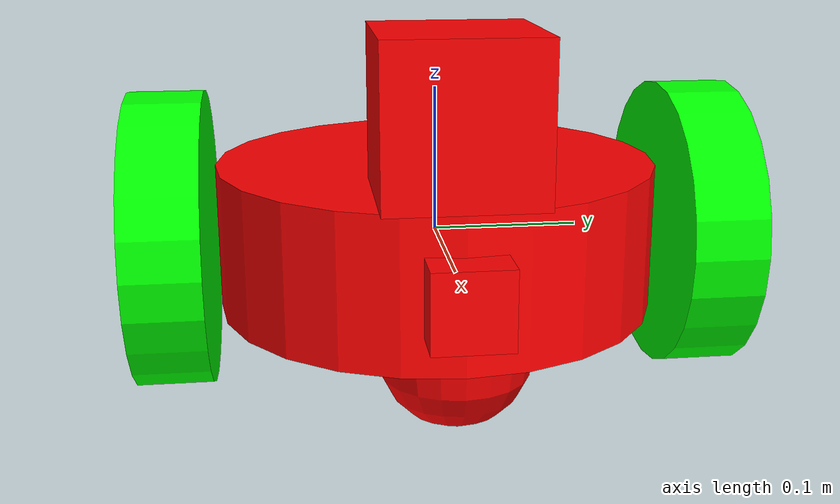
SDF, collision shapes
<?xml version='1.0'?>
<sdf version='1.6'>
  <model name='my_modified_robot'>
    <link name='robot_footprint'>
      <pose frame=''>0 0 0 0 -0 0</pose>
      <inertial>
        <pose frame=''>0 0 0 0 -0 0</pose>
        <mass>15.1</mass>
        <inertia>
          <ixx>0.100002</ixx>
          <ixy>0</ixy>
          <ixz>0</ixz>
          <iyy>0.103976</iyy>
          <iyz>0</iyz>
          <izz>0.103976</izz>
        </inertia>
      </inertial>
      <velocity_decay/>
      <sensor name='camera1' type='camera'>
        <update_rate>30</update_rate>
        <camera name='head'>
          <horizontal_fov>1.39626</horizontal_fov>
          <image>
            <width>800</width>
            <height>800</height>
            <format>R8G8B8</format>
          </image>
          <clip>
            <near>0.02</near>
            <far>300</far>
          </clip>
        </camera>
        <plugin name='camera_controller' filename='libgazebo_ros_camera.so'>
          <alwaysOn>1</alwaysOn>
          <updateRate>0.0</updateRate>
          <cameraName>camera</cameraName>
          <imageTopicName>rgb/image_raw</imageTopicName>
          <cameraInfoTopicName>rgb/camera_info</cameraInfoTopicName>
          <frameName>camera</frameName>
          <hackBaseline>0.07</hackBaseline>
          <distortionK1>0.0</distortionK1>
          <distortionK2>0.0</distortionK2>
          <distortionK3>0.0</distortionK3>
          <distortionT1>0.0</distortionT1>
          <distortionT2>0.0</distortionT2>
          <robotNamespace>/</robotNamespace>
        </plugin>
        <pose frame=''>0.2 0 0 0 -0 0</pose>
      </sensor>
      <gravity>1</gravity>
      <velocity_decay/>
      <sensor name='head_hokuyo_sensor' type='ray'>
        <visualize>0</visualize>
        <update_rate>40</update_rate>
        <ray>
          <scan>
            <horizontal>
              <samples>720</samples>
              <resolution>1</resolution>
              <min_angle>-1.5708</min_angle>
              <max_angle>1.5708</max_angle>
            </horizontal>
            <vertical>
              <samples>1</samples>
              <min_angle>0</min_angle>
              <max_angle>0</max_angle>
            </vertical>
          </scan>
          <range>
            <min>0.1</min>
            <max>30</max>
            <resolution>0.01</resolution>
          </range>
          <noise>
            <type>gaussian</type>
            <mean>0</mean>
            <stddev>0.01</stddev>
          </noise>
        </ray>
        <plugin name='gazebo_ros_head_hokuyo_controller' filename='libgazebo_ros_laser.so'>
          <topicName>/scan</topicName>
          <frameName>hokuyo</frameName>
          <robotNamespace>/</robotNamespace>
        </plugin>
        <pose frame=''>0.15 0 0.1 0 -0 0</pose>
      </sensor>
      <self_collide>0</self_collide>
      <enable_wind>0</enable_wind>
      <kinematic>0</kinematic>
      <visual name='robot_footprint_fixed_joint_lump__chassis_visual_visual'>
        <pose frame=''>0 0 0 0 -0 0</pose>
        <geometry>
          <cylinder>
            <radius>0.15</radius>
            <length>0.1</length>
          </cylinder>
        </geometry>
        <transparency>0</transparency>
        <cast_shadows>1</cast_shadows>
        <material>
          <shader type='vertex'>
            <normal_map>__default__</normal_map>
          </shader>
          <script>
            <name>ModelPreview_1::robot_footprint::robot_footprint_fixed_joint_lump__chassis_visual_visual_MATERIAL_ModelPreview_1::robot_footprint::robot_footprint_fixed_joint_lump__chassis_visual_visual_MATERIAL_</name>
          </script>
          <ambient>1 0 0 1</ambient>
          <diffuse>1 0 0 1</diffuse>
          <specular>1 0 0 1</specular>
          <emissive>1 0 0 1</emissive>
        </material>
      </visual>
      <visual name='robot_footprint_fixed_joint_lump__back_caster_visual_visual_1'>
        <pose frame=''>-0.1 0 -0.05 0 -0 0</pose>
        <geometry>
          <sphere>
            <radius>0.05</radius>
          </sphere>
        </geometry>
        <transparency>0</transparency>
        <cast_shadows>1</cast_shadows>
        <material>
          <shader type='vertex'>
            <normal_map>__default__</normal_map>
          </shader>
          <script>
            <name>ModelPreview_1::robot_footprint::robot_footprint_fixed_joint_lump__back_caster_visual_visual_1_MATERIAL_</name>
          </script>
          <ambient>0 0 0 1</ambient>
          <diffuse>0 0 0 1</diffuse>
          <specular>0 0 0 1</specular>
          <emissive>0 0 0 1</emissive>
        </material>
      </visual>
      <visual name='robot_footprint_fixed_joint_lump__front_caster_visual_visual_2'>
        <pose frame=''>0.1 0 -0.05 0 -0 0</pose>
        <geometry>
          <sphere>
            <radius>0.05</radius>
          </sphere>
        </geometry>
        <transparency>0</transparency>
        <cast_shadows>1</cast_shadows>
        <material>
          <shader type='vertex'>
            <normal_map>__default__</normal_map>
          </shader>
          <script>
            <name>ModelPreview_1::robot_footprint::robot_footprint_fixed_joint_lump__front_caster_visual_visual_2_MATERIAL_</name>
          </script>
          <ambient>0 0 0 1</ambient>
          <diffuse>0 0 0 1</diffuse>
          <specular>0 0 0 1</specular>
          <emissive>0 0 0 1</emissive>
        </material>
      </visual>
      <visual name='robot_footprint_fixed_joint_lump__camera_visual_3'>
        <pose frame=''>0.15 0 0 0 -0 0</pose>
        <geometry>
          <box>
            <size>0.05 0.05 0.05</size>
          </box>
        </geometry>
        <material>
          <script>
            <uri>__default__</uri>
            <name>ModelPreview_1::robot_footprint::robot_footprint_fixed_joint_lump__camera_visual_3_MATERIAL_</name>
          </script>
          <shader type='vertex'>
            <normal_map>__default__</normal_map>
          </shader>
          <ambient>0 1 0 1</ambient>
          <diffuse>0 1 0 1</diffuse>
          <specular>0 1 0 1</specular>
          <emissive>0 1 0 1</emissive>
        </material>
        <transparency>0</transparency>
        <cast_shadows>1</cast_shadows>
      </visual>
      <visual name='robot_footprint_fixed_joint_lump__hokuyo_visual_4'>
        <pose frame=''>0.1 0 0.08 0 -0 0</pose>
        <geometry>
          <mesh>
            <scale>1 1 1</scale>
            <uri>/home/danpy/catkin_ws/src/chase_it/my_robot/meshes/hokuyo.dae</uri>
          </mesh>
        </geometry>
        <material>
          <script>
            <uri>__default__</uri>
            <name>ModelPreview_1::robot_footprint::robot_footprint_fixed_joint_lump__hokuyo_visual_4_MATERIAL_</name>
          </script>
          <shader type='vertex'>
            <normal_map>__default__</normal_map>
          </shader>
          <ambient>0 0 0 1</ambient>
          <diffuse>0 0 0 1</diffuse>
          <specular>0 0 0 1</specular>
          <emissive>0 0 0 1</emissive>
        </material>
        <transparency>0</transparency>
        <cast_shadows>1</cast_shadows>
      </visual>
      <collision name='robot_footprint_fixed_joint_lump__collision_collision'>
        <laser_retro>0</laser_retro>
        <max_contacts>10</max_contacts>
        <pose frame=''>0 0 0 0 -0 0</pose>
        <geometry>
          <cylinder>
            <radius>0.15</radius>
            <length>0.1</length>
          </cylinder>
        </geometry>
        <surface>
          <friction>
            <ode>
              <mu>1</mu>
              <mu2>1</mu2>
              <fdir1>0 0 0</fdir1>
              <slip1>0</slip1>
              <slip2>0</slip2>
            </ode>
            <torsional>
              <coefficient>1</coefficient>
              <patch_radius>0</patch_radius>
              <surface_radius>0</surface_radius>
              <use_patch_radius>1</use_patch_radius>
              <ode>
                <slip>0</slip>
              </ode>
            </torsional>
          </friction>
          <bounce>
            <restitution_coefficient>0</restitution_coefficient>
            <threshold>1e+06</threshold>
          </bounce>
          <contact>
            <collide_without_contact>0</collide_without_contact>
            <collide_without_contact_bitmask>1</collide_without_contact_bitmask>
            <collide_bitmask>1</collide_bitmask>
            <ode>
              <soft_cfm>0</soft_cfm>
              <soft_erp>0.2</soft_erp>
              <kp>1e+13</kp>
              <kd>1</kd>
              <max_vel>0.01</max_vel>
              <min_depth>0</min_depth>
            </ode>
            <bullet>
              <split_impulse>1</split_impulse>
              <split_impulse_penetration_threshold>-0.01</split_impulse_penetration_threshold>
              <soft_cfm>0</soft_cfm>
              <soft_erp>0.2</soft_erp>
              <kp>1e+13</kp>
              <kd>1</kd>
            </bullet>
          </contact>
        </surface>
      </collision>
      <collision name='robot_footprint_fixed_joint_lump__back_caster_collision_collision_1'>
        <laser_retro>0</laser_retro>
        <max_contacts>10</max_contacts>
        <pose frame=''>-0.1 0 -0.05 0 -0 0</pose>
        <geometry>
          <sphere>
            <radius>0.0499</radius>
          </sphere>
        </geometry>
        <surface>
          <friction>
            <ode>
              <mu>1</mu>
              <mu2>1</mu2>
              <fdir1>0 0 0</fdir1>
              <slip1>0</slip1>
              <slip2>0</slip2>
            </ode>
            <torsional>
              <coefficient>1</coefficient>
              <patch_radius>0</patch_radius>
              <surface_radius>0</surface_radius>
              <use_patch_radius>1</use_patch_radius>
              <ode>
                <slip>0</slip>
              </ode>
            </torsional>
          </friction>
          <bounce>
            <restitution_coefficient>0</restitution_coefficient>
            <threshold>1e+06</threshold>
          </bounce>
          <contact>
            <collide_without_contact>0</collide_without_contact>
            <collide_without_contact_bitmask>1</collide_without_contact_bitmask>
            <collide_bitmask>1</collide_bitmask>
            <ode>
              <soft_cfm>0</soft_cfm>
              <soft_erp>0.2</soft_erp>
              <kp>1e+13</kp>
              <kd>1</kd>
              <max_vel>0.01</max_vel>
              <min_depth>0</min_depth>
            </ode>
            <bullet>
              <split_impulse>1</split_impulse>
              <split_impulse_penetration_threshold>-0.01</split_impulse_penetration_threshold>
              <soft_cfm>0</soft_cfm>
              <soft_erp>0.2</soft_erp>
              <kp>1e+13</kp>
              <kd>1</kd>
            </bullet>
          </contact>
        </surface>
      </collision>
      <collision name='robot_footprint_fixed_joint_lump__front_caster_collision_collision_2'>
        <laser_retro>0</laser_retro>
        <max_contacts>10</max_contacts>
        <pose frame=''>0.1 0 -0.05 0 -0 0</pose>
        <geometry>
          <sphere>
            <radius>0.0499</radius>
          </sphere>
        </geometry>
        <surface>
          <friction>
            <ode>
              <mu>1</mu>
              <mu2>1</mu2>
              <fdir1>0 0 0</fdir1>
              <slip1>0</slip1>
              <slip2>0</slip2>
            </ode>
            <torsional>
              <coefficient>1</coefficient>
              <patch_radius>0</patch_radius>
              <surface_radius>0</surface_radius>
              <use_patch_radius>1</use_patch_radius>
              <ode>
                <slip>0</slip>
              </ode>
            </torsional>
          </friction>
          <bounce>
            <restitution_coefficient>0</restitution_coefficient>
            <threshold>1e+06</threshold>
          </bounce>
          <contact>
            <collide_without_contact>0</collide_without_contact>
            <collide_without_contact_bitmask>1</collide_without_contact_bitmask>
            <collide_bitmask>1</collide_bitmask>
            <ode>
              <soft_cfm>0</soft_cfm>
              <soft_erp>0.2</soft_erp>
              <kp>1e+13</kp>
              <kd>1</kd>
              <max_vel>0.01</max_vel>
              <min_depth>0</min_depth>
            </ode>
            <bullet>
              <split_impulse>1</split_impulse>
              <split_impulse_penetration_threshold>-0.01</split_impulse_penetration_threshold>
              <soft_cfm>0</soft_cfm>
              <soft_erp>0.2</soft_erp>
              <kp>1e+13</kp>
              <kd>1</kd>
            </bullet>
          </contact>
        </surface>
      </collision>
      <collision name='robot_footprint_fixed_joint_lump__camera_collision_3'>
        <laser_retro>0</laser_retro>
        <max_contacts>10</max_contacts>
        <pose frame=''>0.15 0 0 0 -0 0</pose>
        <geometry>
          <box>
            <size>0.05 0.05 0.05</size>
          </box>
        </geometry>
        <surface>
          <friction>
            <ode>
              <mu>1</mu>
              <mu2>1</mu2>
              <fdir1>0 0 0</fdir1>
              <slip1>0</slip1>
              <slip2>0</slip2>
            </ode>
            <torsional>
              <coefficient>1</coefficient>
              <patch_radius>0</patch_radius>
              <surface_radius>0</surface_radius>
              <use_patch_radius>1</use_patch_radius>
              <ode>
                <slip>0</slip>
              </ode>
            </torsional>
          </friction>
          <bounce>
            <restitution_coefficient>0</restitution_coefficient>
            <threshold>1e+06</threshold>
          </bounce>
          <contact>
            <collide_without_contact>0</collide_without_contact>
            <collide_without_contact_bitmask>1</collide_without_contact_bitmask>
            <collide_bitmask>1</collide_bitmask>
            <ode>
              <soft_cfm>0</soft_cfm>
              <soft_erp>0.2</soft_erp>
              <kp>1e+13</kp>
              <kd>1</kd>
              <max_vel>0.01</max_vel>
              <min_depth>0</min_depth>
            </ode>
            <bullet>
              <split_impulse>1</split_impulse>
              <split_impulse_penetration_threshold>-0.01</split_impulse_penetration_threshold>
              <soft_cfm>0</soft_cfm>
              <soft_erp>0.2</soft_erp>
              <kp>1e+13</kp>
              <kd>1</kd>
            </bullet>
          </contact>
        </surface>
      </collision>
      <collision name='robot_footprint_fixed_joint_lump__hokuyo_collision_4'>
        <laser_retro>0</laser_retro>
        <max_contacts>10</max_contacts>
        <pose frame=''>0.1 0 0.1 0 -0 0</pose>
        <geometry>
          <box>
            <size>0.1 0.1 0.1</size>
          </box>
        </geometry>
        <surface>
          <friction>
            <ode>
              <mu>1</mu>
              <mu2>1</mu2>
              <fdir1>0 0 0</fdir1>
              <slip1>0</slip1>
              <slip2>0</slip2>
            </ode>
            <torsional>
              <coefficient>1</coefficient>
              <patch_radius>0</patch_radius>
              <surface_radius>0</surface_radius>
              <use_patch_radius>1</use_patch_radius>
              <ode>
                <slip>0</slip>
              </ode>
            </torsional>
          </friction>
          <bounce>
            <restitution_coefficient>0</restitution_coefficient>
            <threshold>1e+06</threshold>
          </bounce>
          <contact>
            <collide_without_contact>0</collide_without_contact>
            <collide_without_contact_bitmask>1</collide_without_contact_bitmask>
            <collide_bitmask>1</collide_bitmask>
            <ode>
              <soft_cfm>0</soft_cfm>
              <soft_erp>0.2</soft_erp>
              <kp>1e+13</kp>
              <kd>1</kd>
              <max_vel>0.01</max_vel>
              <min_depth>0</min_depth>
            </ode>
            <bullet>
              <split_impulse>1</split_impulse>
              <split_impulse_penetration_threshold>-0.01</split_impulse_penetration_threshold>
              <soft_cfm>0</soft_cfm>
              <soft_erp>0.2</soft_erp>
              <kp>1e+13</kp>
              <kd>1</kd>
            </bullet>
          </contact>
        </surface>
      </collision>
    </link>
    <link name='left_wheel'>
      <pose frame=''>0 0.18 -0 0 -0 0</pose>
      <inertial>
        <pose frame=''>0 0 0 -0 1.5707 1.5707</pose>
        <mass>5</mass>
        <inertia>
          <ixx>0.1</ixx>
          <ixy>0</ixy>
          <ixz>0</ixz>
          <iyy>0.1</iyy>
          <iyz>0</iyz>
          <izz>0.1</izz>
        </inertia>
      </inertial>
      <self_collide>0</self_collide>
      <enable_wind>0</enable_wind>
      <kinematic>0</kinematic>
      <gravity>1</gravity>
      <visual name='left_wheel_visual'>
        <pose frame=''>0 0 0 -3.13202 1.57079 -1.56132</pose>
        <geometry>
          <cylinder>
            <length>0.05</length>
            <radius>0.1</radius>
          </cylinder>
        </geometry>
        <transparency>0</transparency>
        <cast_shadows>1</cast_shadows>
        <material>
          <shader type='vertex'>
            <normal_map>__default__</normal_map>
          </shader>
          <script>
            <name>ModelPreview_1::left_wheel::left_wheel_visual_MATERIAL_</name>
          </script>
          <ambient>0 1 0 1</ambient>
          <diffuse>0 1 0 1</diffuse>
          <specular>0 1 0 1</specular>
          <emissive>0 1 0 1</emissive>
        </material>
      </visual>
      <collision name='left_wheel_collision'>
        <laser_retro>0</laser_retro>
        <max_contacts>10</max_contacts>
        <pose frame=''>0 0 0 3.14159 1.57079 -1.57089</pose>
        <geometry>
          <cylinder>
            <radius>0.1</radius>
            <length>0.05</length>
          </cylinder>
        </geometry>
        <surface>
          <friction>
            <ode>
              <mu>1</mu>
              <mu2>1</mu2>
              <fdir1>0 0 0</fdir1>
              <slip1>0</slip1>
              <slip2>0</slip2>
            </ode>
            <torsional>
              <coefficient>1</coefficient>
              <patch_radius>0</patch_radius>
              <surface_radius>0</surface_radius>
              <use_patch_radius>1</use_patch_radius>
              <ode>
                <slip>0</slip>
              </ode>
            </torsional>
          </friction>
          <bounce>
            <restitution_coefficient>0</restitution_coefficient>
            <threshold>1e+06</threshold>
          </bounce>
          <contact>
            <collide_without_contact>0</collide_without_contact>
            <collide_without_contact_bitmask>1</collide_without_contact_bitmask>
            <collide_bitmask>1</collide_bitmask>
            <ode>
              <soft_cfm>0</soft_cfm>
              <soft_erp>0.2</soft_erp>
              <kp>1e+13</kp>
              <kd>1</kd>
              <max_vel>0.01</max_vel>
              <min_depth>0</min_depth>
            </ode>
            <bullet>
              <split_impulse>1</split_impulse>
              <split_impulse_penetration_threshold>-0.01</split_impulse_penetration_threshold>
              <soft_cfm>0</soft_cfm>
              <soft_erp>0.2</soft_erp>
              <kp>1e+13</kp>
              <kd>1</kd>
            </bullet>
          </contact>
        </surface>
      </collision>
    </link>
    <link name='right_wheel'>
      <pose frame=''>-0 -0.18 0 0 -0 0</pose>
      <inertial>
        <pose frame=''>0 0 0 -0 1.5707 1.5707</pose>
        <mass>5</mass>
        <inertia>
          <ixx>0.1</ixx>
          <ixy>0</ixy>
          <ixz>0</ixz>
          <iyy>0.1</iyy>
          <iyz>0</iyz>
          <izz>0.1</izz>
        </inertia>
      </inertial>
      <self_collide>0</self_collide>
      <enable_wind>0</enable_wind>
      <kinematic>0</kinematic>
      <gravity>1</gravity>
      <visual name='right_wheel_visual'>
        <pose frame=''>0 0 0 -3.13202 1.57079 -1.56132</pose>
        <geometry>
          <cylinder>
            <length>0.05</length>
            <radius>0.1</radius>
          </cylinder>
        </geometry>
        <transparency>0</transparency>
        <cast_shadows>1</cast_shadows>
        <material>
          <shader type='vertex'>
            <normal_map>__default__</normal_map>
          </shader>
          <script>
            <name>ModelPreview_1::right_wheel::right_wheel_visual_MATERIAL_</name>
          </script>
          <ambient>0 1 0 1</ambient>
          <diffuse>0 1 0 1</diffuse>
          <specular>0 1 0 1</specular>
          <emissive>0 1 0 1</emissive>
        </material>
      </visual>
      <collision name='right_wheel_collision'>
        <laser_retro>0</laser_retro>
        <max_contacts>10</max_contacts>
        <pose frame=''>0 0 0 3.14159 1.57079 -1.57089</pose>
        <geometry>
          <cylinder>
            <radius>0.1</radius>
            <length>0.05</length>
          </cylinder>
        </geometry>
        <surface>
          <friction>
            <ode>
              <mu>1</mu>
              <mu2>1</mu2>
              <fdir1>0 0 0</fdir1>
              <slip1>0</slip1>
              <slip2>0</slip2>
            </ode>
            <torsional>
              <coefficient>1</coefficient>
              <patch_radius>0</patch_radius>
              <surface_radius>0</surface_radius>
              <use_patch_radius>1</use_patch_radius>
              <ode>
                <slip>0</slip>
              </ode>
            </torsional>
          </friction>
          <bounce>
            <restitution_coefficient>0</restitution_coefficient>
            <threshold>1e+06</threshold>
          </bounce>
          <contact>
            <collide_without_contact>0</collide_without_contact>
            <collide_without_contact_bitmask>1</collide_without_contact_bitmask>
            <collide_bitmask>1</collide_bitmask>
            <ode>
              <soft_cfm>0</soft_cfm>
              <soft_erp>0.2</soft_erp>
              <kp>1e+13</kp>
              <kd>1</kd>
              <max_vel>0.01</max_vel>
              <min_depth>0</min_depth>
            </ode>
            <bullet>
              <split_impulse>1</split_impulse>
              <split_impulse_penetration_threshold>-0.01</split_impulse_penetration_threshold>
              <soft_cfm>0</soft_cfm>
              <soft_erp>0.2</soft_erp>
              <kp>1e+13</kp>
              <kd>1</kd>
            </bullet>
          </contact>
        </surface>
      </collision>
    </link>
    <joint name='left_wheel_hinge' type='revolute'>
      <parent>robot_footprint</parent>
      <child>left_wheel</child>
      <pose frame=''>0 0 0 0 -0 0</pose>
      <axis>
        <xyz>0 1 0</xyz>
        <use_parent_model_frame>1</use_parent_model_frame>
        <limit>
          <lower>-1e+16</lower>
          <upper>1e+16</upper>
          <effort>-1</effort>
          <velocity>-1</velocity>
        </limit>
        <dynamics>
          <spring_reference>0</spring_reference>
          <spring_stiffness>0</spring_stiffness>
          <damping>1</damping>
          <friction>1</friction>
        </dynamics>
      </axis>
      <physics>
        <ode>
          <limit>
            <cfm>0</cfm>
            <erp>0.2</erp>
          </limit>
          <suspension>
            <cfm>0</cfm>
            <erp>0.2</erp>
          </suspension>
        </ode>
      </physics>
    </joint>
    <joint name='right_wheel_hinge' type='revolute'>
      <parent>robot_footprint</parent>
      <child>right_wheel</child>
      <pose frame=''>0 0 0 0 -0 0</pose>
      <axis>
        <xyz>0 1 0</xyz>
        <use_parent_model_frame>1</use_parent_model_frame>
        <limit>
          <lower>-1e+16</lower>
          <upper>1e+16</upper>
          <effort>-1</effort>
          <velocity>-1</velocity>
        </limit>
        <dynamics>
          <spring_reference>0</spring_reference>
          <spring_stiffness>0</spring_stiffness>
          <damping>1</damping>
          <friction>1</friction>
        </dynamics>
      </axis>
      <physics>
        <ode>
          <limit>
            <cfm>0</cfm>
            <erp>0.2</erp>
          </limit>
          <suspension>
            <cfm>0</cfm>
            <erp>0.2</erp>
          </suspension>
        </ode>
      </physics>
    </joint>
    <static>0</static>
    <allow_auto_disable>1</allow_auto_disable>
    <plugin name='differential_drive_controller' filename='libgazebo_ros_diff_drive.so'>
      <legacyMode>0</legacyMode>
      <alwaysOn>1</alwaysOn>
      <updateRate>10</updateRate>
      <leftJoint>left_wheel_hinge</leftJoint>
      <rightJoint>right_wheel_hinge</rightJoint>
      <wheelSeparation>0.4</wheelSeparation>
      <wheelDiameter>0.2</wheelDiameter>
      <torque>10</torque>
      <commandTopic>cmd_vel</commandTopic>
      <odometryTopic>odom</odometryTopic>
      <odometryFrame>odom</odometryFrame>
      <robotBaseFrame>robot_footprint</robotBaseFrame>
      <publishWheelTF>0</publishWheelTF>
      <publishWheelJointState>0</publishWheelJointState>
      <rosDebugLevel>na</rosDebugLevel>
      <wheelAcceleration>0</wheelAcceleration>
      <wheelTorque>5</wheelTorque>
      <odometrySource>world</odometrySource>
      <publishTf>1</publishTf>
      <publishOdomTF>1</publishOdomTF>
      <robotNamespace>/</robotNamespace>
    </plugin>
  </model>
</sdf>
